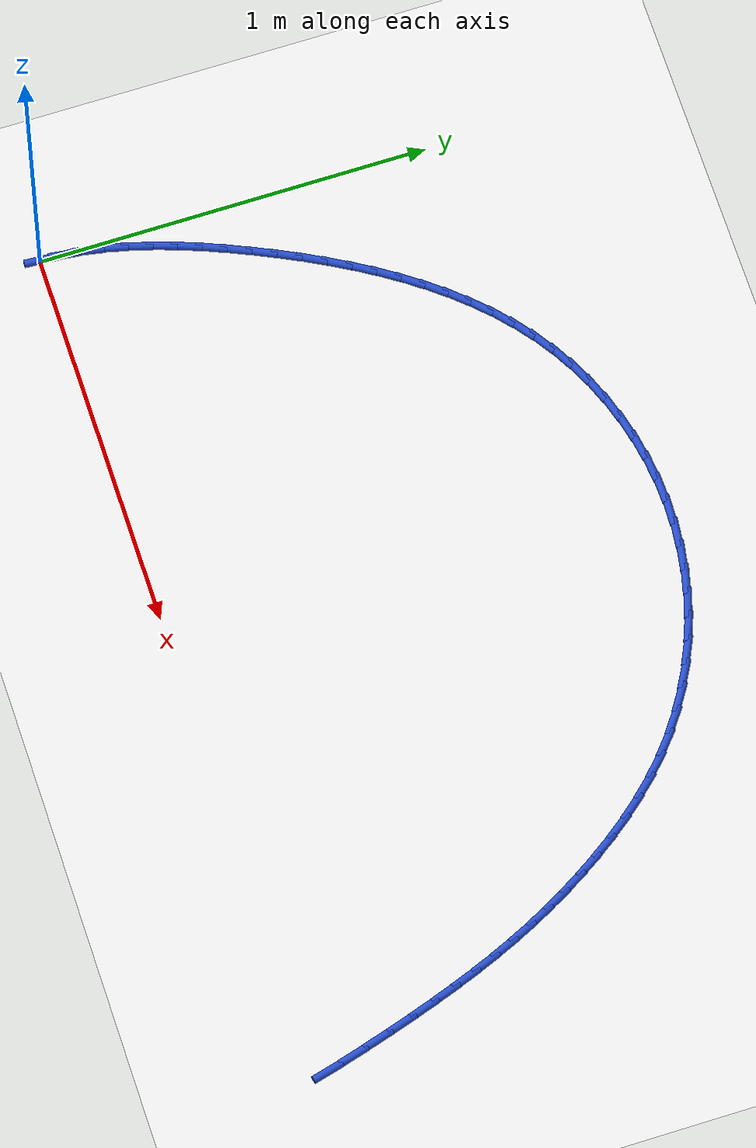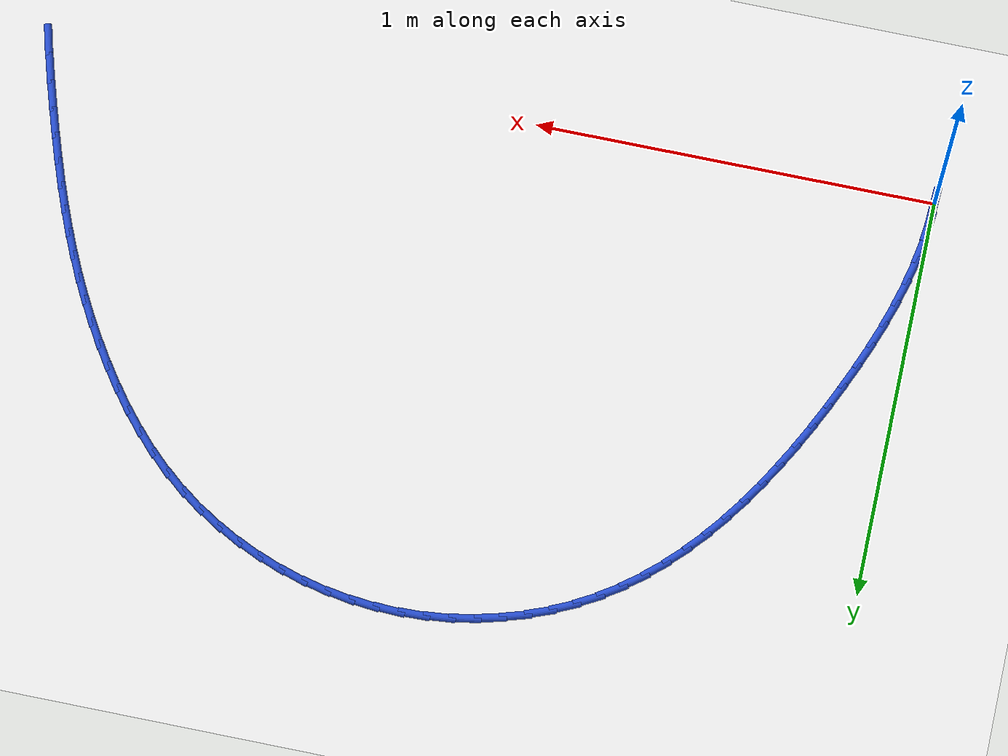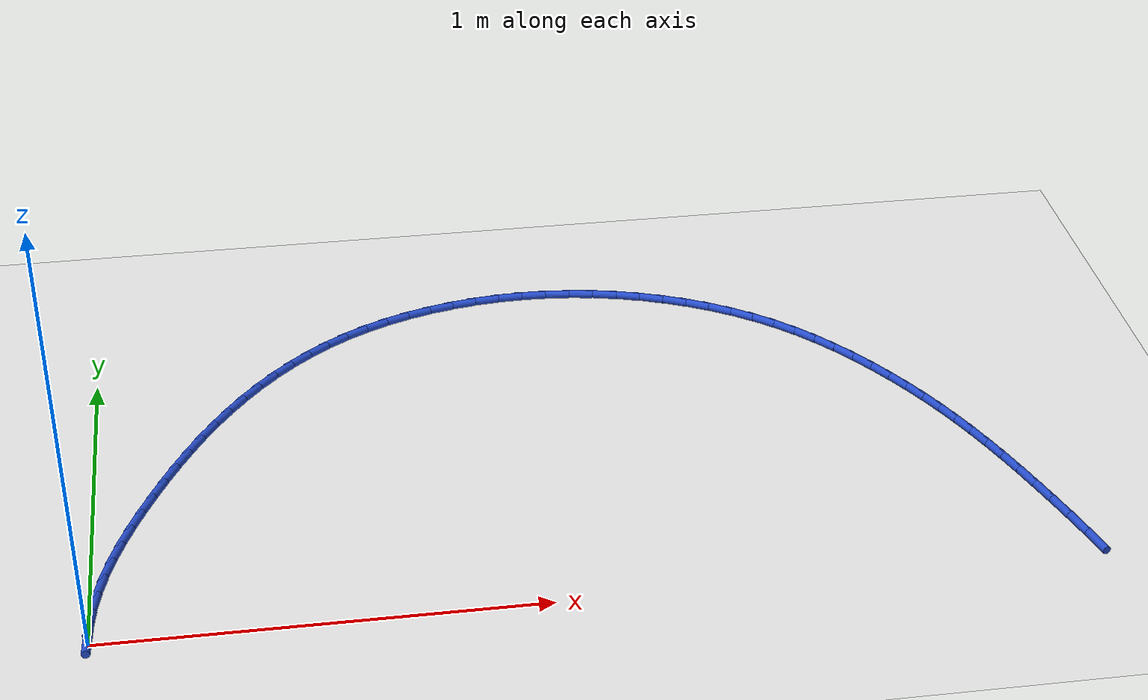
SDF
<sdf version="1.6">
 <world name="default">
  <model name="ground_plane">
   <static>1</static>
   <link name="link">
    <collision name="collision">
     <geometry><plane><normal>0 0 1</normal><size>100 100</size></plane></geometry>
     <surface><friction><ode><mu>100</mu><mu2>50</mu2></ode></friction></surface>
    </collision>
    <visual name="visual">
     <cast_shadows>0</cast_shadows>
     <geometry><plane><normal>0 0 1</normal><size>100 100</size></plane></geometry>
     <material>
      <script><uri>file://media/materials/scripts/gazebo.material</uri><name>Gazebo/WhiteGlow</name></script>
     </material>
    </visual>
   </link>
  </model>
  <model name="line">
   <link name="link_0">
    <pose>-3.469446951953614e-18 2.7755575615628914e-17 0.01 0 1.57 1.5122594867181272</pose>
    <collision name="collision">
     <geometry><cylinder><radius>0.01</radius><length>0.08</length></cylinder></geometry>
    </collision>
    <visual name="visual">
     <material>
      <script><name>Gazebo/Blue</name><uri>file://media/materials/scripts/gazebo.material</uri></script>
     </material>
     <geometry><cylinder><radius>0.01</radius><length>0.08</length></cylinder></geometry>
    </visual>
   </link>
   <link name="link_1">
    <pose>0.0035615798896285896 0.06077388127479469 0.01 0 1.57 1.4455330049709205</pose>
    <collision name="collision">
     <geometry><cylinder><radius>0.01</radius><length>0.08</length></cylinder></geometry>
    </collision>
    <visual name="visual">
     <material>
      <script><name>Gazebo/Blue</name><uri>file://media/materials/scripts/gazebo.material</uri></script>
     </material>
     <geometry><cylinder><radius>0.01</radius><length>0.08</length></cylinder></geometry>
    </visual>
   </link>
   <link name="link_2">
    <pose>0.011122728220957737 0.12081986854129141 0.01 0 1.57 1.3843247965620284</pose>
    <collision name="collision">
     <geometry><cylinder><radius>0.01</radius><length>0.08</length></cylinder></geometry>
    </collision>
    <visual name="visual">
     <material>
      <script><name>Gazebo/Blue</name><uri>file://media/materials/scripts/gazebo.material</uri></script>
     </material>
     <geometry><cylinder><radius>0.01</radius><length>0.08</length></cylinder></geometry>
    </visual>
   </link>
   <link name="link_3">
    <pose>0.0223268703134665 0.180206832028218 0.01 0 1.57 1.329160220083678</pose>
    <collision name="collision">
     <geometry><cylinder><radius>0.01</radius><length>0.08</length></cylinder></geometry>
    </collision>
    <visual name="visual">
     <material>
      <script><name>Gazebo/Blue</name><uri>file://media/materials/scripts/gazebo.material</uri></script>
     </material>
     <geometry><cylinder><radius>0.01</radius><length>0.08</length></cylinder></geometry>
    </visual>
   </link>
   <link name="link_4">
    <pose>0.03681743148663398 0.23900364196430238 0.01 0 1.57 1.280319859483705</pose>
    <collision name="collision">
     <geometry><cylinder><radius>0.01</radius><length>0.08</length></cylinder></geometry>
    </collision>
    <visual name="visual">
     <material>
      <script><name>Gazebo/Blue</name><uri>file://media/materials/scripts/gazebo.material</uri></script>
     </material>
     <geometry><cylinder><radius>0.01</radius><length>0.08</length></cylinder></geometry>
    </visual>
   </link>
   <link name="link_5">
    <pose>0.05423783705993924 0.2972791685782725 0.01 0 1.57 1.2378921011742043</pose>
    <collision name="collision">
     <geometry><cylinder><radius>0.01</radius><length>0.08</length></cylinder></geometry>
    </collision>
    <visual name="visual">
     <material>
      <script><name>Gazebo/Blue</name><uri>file://media/materials/scripts/gazebo.material</uri></script>
     </material>
     <geometry><cylinder><radius>0.01</radius><length>0.08</length></cylinder></geometry>
    </visual>
   </link>
   <link name="link_6">
    <pose>0.07423151235286138 0.3551022820988563 0.01 0 1.57 1.2018306769014013</pose>
    <collision name="collision">
     <geometry><cylinder><radius>0.01</radius><length>0.08</length></cylinder></geometry>
    </collision>
    <visual name="visual">
     <material>
      <script><name>Gazebo/Blue</name><uri>file://media/materials/scripts/gazebo.material</uri></script>
     </material>
     <geometry><cylinder><radius>0.01</radius><length>0.08</length></cylinder></geometry>
    </visual>
   </link>
   <link name="link_7">
    <pose>0.09644188268487944 0.4125418527547814 0.01 0 1.57 1.1720077185895563</pose>
    <collision name="collision">
     <geometry><cylinder><radius>0.01</radius><length>0.08</length></cylinder></geometry>
    </collision>
    <visual name="visual">
     <material>
      <script><name>Gazebo/Blue</name><uri>file://media/materials/scripts/gazebo.material</uri></script>
     </material>
     <geometry><cylinder><radius>0.01</radius><length>0.08</length></cylinder></geometry>
    </visual>
   </link>
   <link name="link_8">
    <pose>0.12051237337547249 0.4696667507747758 0.01 0 1.57 1.1481080132760115</pose>
    <collision name="collision">
     <geometry><cylinder><radius>0.01</radius><length>0.08</length></cylinder></geometry>
    </collision>
    <visual name="visual">
     <material>
      <script><name>Gazebo/Blue</name><uri>file://media/materials/scripts/gazebo.material</uri></script>
     </material>
     <geometry><cylinder><radius>0.01</radius><length>0.08</length></cylinder></geometry>
    </visual>
   </link>
   <link name="link_9">
    <pose>0.146094134003004 0.526540275438637 0.01 0 1.57 1.125929688942115</pose>
    <collision name="collision">
     <geometry><cylinder><radius>0.01</radius><length>0.08</length></cylinder></geometry>
    </collision>
    <visual name="visual">
     <material>
      <script><name>Gazebo/Blue</name><uri>file://media/materials/scripts/gazebo.material</uri></script>
     </material>
     <geometry><cylinder><radius>0.01</radius><length>0.08</length></cylinder></geometry>
    </visual>
   </link>
   <link name="link_10">
    <pose>0.1730466815888444 0.5830754456690236 0.01 0 1.57 1.1009221935636035</pose>
    <collision name="collision">
     <geometry><cylinder><radius>0.01</radius><length>0.08</length></cylinder></geometry>
    </collision>
    <visual name="visual">
     <material>
      <script><name>Gazebo/Blue</name><uri>file://media/materials/scripts/gazebo.material</uri></script>
     </material>
     <geometry><cylinder><radius>0.01</radius><length>0.08</length></cylinder></geometry>
    </visual>
   </link>
   <link name="link_11">
    <pose>0.20145653995682236 0.6390215568104097 0.01 0 1.57 1.0726861949880462</pose>
    <collision name="collision">
     <geometry><cylinder><radius>0.01</radius><length>0.08</length></cylinder></geometry>
    </collision>
    <visual name="visual">
     <material>
      <script><name>Gazebo/Blue</name><uri>file://media/materials/scripts/gazebo.material</uri></script>
     </material>
     <geometry><cylinder><radius>0.01</radius><length>0.08</length></cylinder></geometry>
    </visual>
   </link>
   <link name="link_12">
    <pose>0.23142169364188653 0.6941196384257478 0.01 0 1.57 1.0410150308499118</pose>
    <collision name="collision">
     <geometry><cylinder><radius>0.01</radius><length>0.08</length></cylinder></geometry>
    </collision>
    <visual name="visual">
     <material>
      <script><name>Gazebo/Blue</name><uri>file://media/materials/scripts/gazebo.material</uri></script>
     </material>
     <geometry><cylinder><radius>0.01</radius><length>0.08</length></cylinder></geometry>
    </visual>
   </link>
   <link name="link_13">
    <pose>0.2630401271789856 0.7481107200779891 0.01 0 1.57 1.0056783810211023</pose>
    <collision name="collision">
     <geometry><cylinder><radius>0.01</radius><length>0.08</length></cylinder></geometry>
    </collision>
    <visual name="visual">
     <material>
      <script><name>Gazebo/Blue</name><uri>file://media/materials/scripts/gazebo.material</uri></script>
     </material>
     <geometry><cylinder><radius>0.01</radius><length>0.08</length></cylinder></geometry>
    </visual>
   </link>
   <link name="link_14">
    <pose>0.2964098251030683 0.8007358313300863 0.01 0 1.57 0.9664304961892585</pose>
    <collision name="collision">
     <geometry><cylinder><radius>0.01</radius><length>0.08</length></cylinder></geometry>
    </collision>
    <visual name="visual">
     <material>
      <script><name>Gazebo/Blue</name><uri>file://media/materials/scripts/gazebo.material</uri></script>
     </material>
     <geometry><cylinder><radius>0.01</radius><length>0.08</length></cylinder></geometry>
    </visual>
   </link>
   <link name="link_15">
    <pose>0.33162877194908347 0.8517360017449914 0.01 0 1.57 0.9230221939276958</pose>
    <collision name="collision">
     <geometry><cylinder><radius>0.01</radius><length>0.08</length></cylinder></geometry>
    </collision>
    <visual name="visual">
     <material>
      <script><name>Gazebo/Blue</name><uri>file://media/materials/scripts/gazebo.material</uri></script>
     </material>
     <geometry><cylinder><radius>0.01</radius><length>0.08</length></cylinder></geometry>
    </visual>
   </link>
   <link name="link_16">
    <pose>0.36879495225197956 0.9008522608856561 0.01 0 1.57 0.8752179065673931</pose>
    <collision name="collision">
     <geometry><cylinder><radius>0.01</radius><length>0.08</length></cylinder></geometry>
    </collision>
    <visual name="visual">
     <material>
      <script><name>Gazebo/Blue</name><uri>file://media/materials/scripts/gazebo.material</uri></script>
     </material>
     <geometry><cylinder><radius>0.01</radius><length>0.08</length></cylinder></geometry>
    </visual>
   </link>
   <link name="link_17">
    <pose>0.40800635054670564 0.947825638315033 0.01 0 1.57 0.8228189444351948</pose>
    <collision name="collision">
     <geometry><cylinder><radius>0.01</radius><length>0.08</length></cylinder></geometry>
    </collision>
    <visual name="visual">
     <material>
      <script><name>Gazebo/Blue</name><uri>file://media/materials/scripts/gazebo.material</uri></script>
     </material>
     <geometry><cylinder><radius>0.01</radius><length>0.08</length></cylinder></geometry>
    </visual>
   </link>
   <link name="link_18">
    <pose>0.44936095136821014 0.9923971635960737 0.01 0 1.57 0.7656936113624581</pose>
    <collision name="collision">
     <geometry><cylinder><radius>0.01</radius><length>0.08</length></cylinder></geometry>
    </collision>
    <visual name="visual">
     <material>
      <script><name>Gazebo/Blue</name><uri>file://media/materials/scripts/gazebo.material</uri></script>
     </material>
     <geometry><cylinder><radius>0.01</radius><length>0.08</length></cylinder></geometry>
    </visual>
   </link>
   <link name="link_19">
    <pose>0.49295673925144196 1.0343078662917304 0.01 0 1.57 0.7038136423994941</pose>
    <collision name="collision">
     <geometry><cylinder><radius>0.01</radius><length>0.08</length></cylinder></geometry>
    </collision>
    <visual name="visual">
     <material>
      <script><name>Gazebo/Blue</name><uri>file://media/materials/scripts/gazebo.material</uri></script>
     </material>
     <geometry><cylinder><radius>0.01</radius><length>0.08</length></cylinder></geometry>
    </visual>
   </link>
   <link name="link_20">
    <pose>0.5388916987313499 1.073298775964956 0.01 0 1.57 0.6372944506233511</pose>
    <collision name="collision">
     <geometry><cylinder><radius>0.01</radius><length>0.08</length></cylinder></geometry>
    </collision>
    <visual name="visual">
     <material>
      <script><name>Gazebo/Blue</name><uri>file://media/materials/scripts/gazebo.material</uri></script>
     </material>
     <geometry><cylinder><radius>0.01</radius><length>0.08</length></cylinder></geometry>
    </visual>
   </link>
   <link name="link_21">
    <pose>0.5872638143428823 1.1091109221787008 0.01 0 1.57 0.5664502256882802</pose>
    <collision name="collision">
     <geometry><cylinder><radius>0.01</radius><length>0.08</length></cylinder></geometry>
    </collision>
    <visual name="visual">
     <material>
      <script><name>Gazebo/Blue</name><uri>file://media/materials/scripts/gazebo.material</uri></script>
     </material>
     <geometry><cylinder><radius>0.01</radius><length>0.08</length></cylinder></geometry>
    </visual>
   </link>
   <link name="link_22">
    <pose>0.6381700008158514 1.1414858178577818 0.01 0 1.57 0.49369029271339276</pose>
    <collision name="collision">
     <geometry><cylinder><radius>0.01</radius><length>0.08</length></cylinder></geometry>
    </collision>
    <visual name="visual">
     <material>
      <script><name>Gazebo/Blue</name><uri>file://media/materials/scripts/gazebo.material</uri></script>
     </material>
     <geometry><cylinder><radius>0.01</radius><length>0.08</length></cylinder></geometry>
    </visual>
   </link>
   <link name="link_23">
    <pose>0.6915746291072221 1.1702248621650384 0.01 0 1.57 0.42282264379164486</pose>
    <collision name="collision">
     <geometry><cylinder><radius>0.01</radius><length>0.08</length></cylinder></geometry>
    </collision>
    <visual name="visual">
     <material>
      <script><name>Gazebo/Blue</name><uri>file://media/materials/scripts/gazebo.material</uri></script>
     </material>
     <geometry><cylinder><radius>0.01</radius><length>0.08</length></cylinder></geometry>
    </visual>
   </link>
   <link name="link_24">
    <pose>0.7471829674878843 1.1952465226460602 0.01 0 1.57 0.35385954336195535</pose>
    <collision name="collision">
     <geometry><cylinder><radius>0.01</radius><length>0.08</length></cylinder></geometry>
    </collision>
    <visual name="visual">
     <material>
      <script><name>Gazebo/Blue</name><uri>file://media/materials/scripts/gazebo.material</uri></script>
     </material>
     <geometry><cylinder><radius>0.01</radius><length>0.08</length></cylinder></geometry>
    </visual>
   </link>
   <link name="link_25">
    <pose>0.8046702787529745 1.2164828239908003 0.01 0 1.57 0.28632899231018466</pose>
    <collision name="collision">
     <geometry><cylinder><radius>0.01</radius><length>0.08</length></cylinder></geometry>
    </collision>
    <visual name="visual">
     <material>
      <script><name>Gazebo/Blue</name><uri>file://media/materials/scripts/gazebo.material</uri></script>
     </material>
     <geometry><cylinder><radius>0.01</radius><length>0.08</length></cylinder></geometry>
    </visual>
   </link>
   <link name="link_26">
    <pose>0.8637118256976313 1.2338657908892114 0.01 0 1.57 0.219745277671107</pose>
    <collision name="collision">
     <geometry><cylinder><radius>0.01</radius><length>0.08</length></cylinder></geometry>
    </collision>
    <visual name="visual">
     <material>
      <script><name>Gazebo/Blue</name><uri>file://media/materials/scripts/gazebo.material</uri></script>
     </material>
     <geometry><cylinder><radius>0.01</radius><length>0.08</length></cylinder></geometry>
    </visual>
   </link>
   <link name="link_27">
    <pose>0.9239828711169915 1.2473274480312468 0.01 0 1.57 0.1536186161068233</pose>
    <collision name="collision">
     <geometry><cylinder><radius>0.01</radius><length>0.08</length></cylinder></geometry>
    </collision>
    <visual name="visual">
     <material>
      <script><name>Gazebo/Blue</name><uri>file://media/materials/scripts/gazebo.material</uri></script>
     </material>
     <geometry><cylinder><radius>0.01</radius><length>0.08</length></cylinder></geometry>
    </visual>
   </link>
   <link name="link_28">
    <pose>0.9851586778061934 1.2567998201068593 0.01 0 1.57 0.08746213480404744</pose>
    <collision name="collision">
     <geometry><cylinder><radius>0.01</radius><length>0.08</length></cylinder></geometry>
    </collision>
    <visual name="visual">
     <material>
      <script><name>Gazebo/Blue</name><uri>file://media/materials/scripts/gazebo.material</uri></script>
     </material>
     <geometry><cylinder><radius>0.01</radius><length>0.08</length></cylinder></geometry>
    </visual>
   </link>
   <link name="link_29">
    <pose>1.046914508560374 1.2622149318060019 0.01 0 1.57 0.02079772273569857</pose>
    <collision name="collision">
     <geometry><cylinder><radius>0.01</radius><length>0.08</length></cylinder></geometry>
    </collision>
    <visual name="visual">
     <material>
      <script><name>Gazebo/Blue</name><uri>file://media/materials/scripts/gazebo.material</uri></script>
     </material>
     <geometry><cylinder><radius>0.01</radius><length>0.08</length></cylinder></geometry>
    </visual>
   </link>
   <link name="link_30">
    <pose>1.1089256261746714 1.2635048078186277 0.01 0 1.57 -0.0467063016780621</pose>
    <collision name="collision">
     <geometry><cylinder><radius>0.01</radius><length>0.08</length></cylinder></geometry>
    </collision>
    <visual name="visual">
     <material>
      <script><name>Gazebo/Blue</name><uri>file://media/materials/scripts/gazebo.material</uri></script>
     </material>
     <geometry><cylinder><radius>0.01</radius><length>0.08</length></cylinder></geometry>
    </visual>
   </link>
   <link name="link_31">
    <pose>1.170870355317502 1.2606094929498426 0.01 0 1.57 -0.11390092220965328</pose>
    <collision name="collision">
     <geometry><cylinder><radius>0.01</radius><length>0.08</length></cylinder></geometry>
    </collision>
    <visual name="visual">
     <material>
      <script><name>Gazebo/Blue</name><uri>file://media/materials/scripts/gazebo.material</uri></script>
     </material>
     <geometry><cylinder><radius>0.01</radius><length>0.08</length></cylinder></geometry>
    </visual>
   </link>
   <link name="link_32">
    <pose>1.2324630962127683 1.2535635264801315 0.01 0 1.57 -0.180067508556298</pose>
    <collision name="collision">
     <geometry><cylinder><radius>0.01</radius><length>0.08</length></cylinder></geometry>
    </collision>
    <visual name="visual">
     <material>
      <script><name>Gazebo/Blue</name><uri>file://media/materials/scripts/gazebo.material</uri></script>
     </material>
     <geometry><cylinder><radius>0.01</radius><length>0.08</length></cylinder></geometry>
    </visual>
   </link>
   <link name="link_33">
    <pose>1.2934417542231358 1.242463015855083 0.01 0 1.57 -0.2454824108140555</pose>
    <collision name="collision">
     <geometry><cylinder><radius>0.01</radius><length>0.08</length></cylinder></geometry>
    </collision>
    <visual name="visual">
     <material>
      <script><name>Gazebo/Blue</name><uri>file://media/materials/scripts/gazebo.material</uri></script>
     </material>
     <geometry><cylinder><radius>0.01</radius><length>0.08</length></cylinder></geometry>
    </visual>
   </link>
   <link name="link_34">
    <pose>1.3535446369547877 1.2274051221364952 0.01 0 1.57 -0.3104593813007794</pose>
    <collision name="collision">
     <geometry><cylinder><radius>0.01</radius><length>0.08</length></cylinder></geometry>
    </collision>
    <visual name="visual">
     <material>
      <script><name>Gazebo/Blue</name><uri>file://media/materials/scripts/gazebo.material</uri></script>
     </material>
     <geometry><cylinder><radius>0.01</radius><length>0.08</length></cylinder></geometry>
    </visual>
   </link>
   <link name="link_35">
    <pose>1.4125100520139076 1.208487006386167 0.01 0 1.57 -0.3753243724705086</pose>
    <collision name="collision">
     <geometry><cylinder><radius>0.01</radius><length>0.08</length></cylinder></geometry>
    </collision>
    <visual name="visual">
     <material>
      <script><name>Gazebo/Blue</name><uri>file://media/materials/scripts/gazebo.material</uri></script>
     </material>
     <geometry><cylinder><radius>0.01</radius><length>0.08</length></cylinder></geometry>
    </visual>
   </link>
   <link name="link_36">
    <pose>1.470076307006677 1.1858058296658969 0.01 0 1.57 -0.4404084631138342</pose>
    <collision name="collision">
     <geometry><cylinder><radius>0.01</radius><length>0.08</length></cylinder></geometry>
    </collision>
    <visual name="visual">
     <material>
      <script><name>Gazebo/Blue</name><uri>file://media/materials/scripts/gazebo.material</uri></script>
     </material>
     <geometry><cylinder><radius>0.01</radius><length>0.08</length></cylinder></geometry>
    </visual>
   </link>
   <link name="link_37">
    <pose>1.5259817095392798 1.1594587530374834 0.01 0 1.57 -0.5060410246189369</pose>
    <collision name="collision">
     <geometry><cylinder><radius>0.01</radius><length>0.08</length></cylinder></geometry>
    </collision>
    <visual name="visual">
     <material>
      <script><name>Gazebo/Blue</name><uri>file://media/materials/scripts/gazebo.material</uri></script>
     </material>
     <geometry><cylinder><radius>0.01</radius><length>0.08</length></cylinder></geometry>
    </visual>
   </link>
   <link name="link_38">
    <pose>1.5799645672178984 1.129542937562725 0.01 0 1.57 -0.5725424721782693</pose>
    <collision name="collision">
     <geometry><cylinder><radius>0.01</radius><length>0.08</length></cylinder></geometry>
    </collision>
    <visual name="visual">
     <material>
      <script><name>Gazebo/Blue</name><uri>file://media/materials/scripts/gazebo.material</uri></script>
     </material>
     <geometry><cylinder><radius>0.01</radius><length>0.08</length></cylinder></geometry>
    </visual>
   </link>
   <link name="link_39">
    <pose>1.631763187648716 1.0961555443034205 0.01 0 1.57 -0.6402159566670357</pose>
    <collision name="collision">
     <geometry><cylinder><radius>0.01</radius><length>0.08</length></cylinder></geometry>
    </collision>
    <visual name="visual">
     <material>
      <script><name>Gazebo/Blue</name><uri>file://media/materials/scripts/gazebo.material</uri></script>
     </material>
     <geometry><cylinder><radius>0.01</radius><length>0.08</length></cylinder></geometry>
    </visual>
   </link>
   <link name="link_40">
    <pose>1.681115878437915 1.0593937343213689 0.01 0 1.57 -0.7092335862960552</pose>
    <collision name="collision">
     <geometry><cylinder><radius>0.01</radius><length>0.08</length></cylinder></geometry>
    </collision>
    <visual name="visual">
     <material>
      <script><name>Gazebo/Blue</name><uri>file://media/materials/scripts/gazebo.material</uri></script>
     </material>
     <geometry><cylinder><radius>0.01</radius><length>0.08</length></cylinder></geometry>
    </visual>
   </link>
   <link name="link_41">
    <pose>1.7277650889238436 1.019359526022124 0.01 0 1.57 -0.775997732054953</pose>
    <collision name="collision">
     <geometry><cylinder><radius>0.01</radius><length>0.08</length></cylinder></geometry>
    </collision>
    <visual name="visual">
     <material>
      <script><name>Gazebo/Blue</name><uri>file://media/materials/scripts/gazebo.material</uri></script>
     </material>
     <geometry><cylinder><radius>0.01</radius><length>0.08</length></cylinder></geometry>
    </visual>
   </link>
   <link name="link_42">
    <pose>1.7716065343942418 0.9763346851663892 0.01 0 1.57 -0.8359291972436825</pose>
    <collision name="collision">
     <geometry><cylinder><radius>0.01</radius><length>0.08</length></cylinder></geometry>
    </collision>
    <visual name="visual">
     <material>
      <script><name>Gazebo/Blue</name><uri>file://media/materials/scripts/gazebo.material</uri></script>
     </material>
     <geometry><cylinder><radius>0.01</radius><length>0.08</length></cylinder></geometry>
    </visual>
   </link>
   <link name="link_43">
    <pose>1.8127306604351434 0.9308293534602364 0.01 0 1.57 -0.8891421645476166</pose>
    <collision name="collision">
     <geometry><cylinder><radius>0.01</radius><length>0.08</length></cylinder></geometry>
    </collision>
    <visual name="visual">
     <material>
      <script><name>Gazebo/Blue</name><uri>file://media/materials/scripts/gazebo.material</uri></script>
     </material>
     <geometry><cylinder><radius>0.01</radius><length>0.08</length></cylinder></geometry>
    </visual>
   </link>
   <link name="link_44">
    <pose>1.8512404965613 0.8833684307991022 0.01 0 1.57 -0.9361252658417378</pose>
    <collision name="collision">
     <geometry><cylinder><radius>0.01</radius><length>0.08</length></cylinder></geometry>
    </collision>
    <visual name="visual">
     <material>
      <script><name>Gazebo/Blue</name><uri>file://media/materials/scripts/gazebo.material</uri></script>
     </material>
     <geometry><cylinder><radius>0.01</radius><length>0.08</length></cylinder></geometry>
    </visual>
   </link>
   <link name="link_45">
    <pose>1.8872390722874652 0.834476817078423 0.01 0 1.57 -0.9773626967201882</pose>
    <collision name="collision">
     <geometry><cylinder><radius>0.01</radius><length>0.08</length></cylinder></geometry>
    </collision>
    <visual name="visual">
     <material>
      <script><name>Gazebo/Blue</name><uri>file://media/materials/scripts/gazebo.material</uri></script>
     </material>
     <geometry><cylinder><radius>0.01</radius><length>0.08</length></cylinder></geometry>
    </visual>
   </link>
   <link name="link_46">
    <pose>1.9208294171283882 0.7846794121936355 0.01 0 1.57 -1.0135053760773045</pose>
    <collision name="collision">
     <geometry><cylinder><radius>0.01</radius><length>0.08</length></cylinder></geometry>
    </collision>
    <visual name="visual">
     <material>
      <script><name>Gazebo/Blue</name><uri>file://media/materials/scripts/gazebo.material</uri></script>
     </material>
     <geometry><cylinder><radius>0.01</radius><length>0.08</length></cylinder></geometry>
    </visual>
   </link>
   <link name="link_47">
    <pose>1.952119666249377 0.7344689647443545 0.01 0 1.57 -1.0475892070692374</pose>
    <collision name="collision">
     <geometry><cylinder><radius>0.01</radius><length>0.08</length></cylinder></geometry>
    </collision>
    <visual name="visual">
     <material>
      <script><name>Gazebo/Blue</name><uri>file://media/materials/scripts/gazebo.material</uri></script>
     </material>
     <geometry><cylinder><radius>0.01</radius><length>0.08</length></cylinder></geometry>
    </visual>
   </link>
   <link name="link_48">
    <pose>1.9812868896859157 0.6839041267584037 0.01 0 1.57 -1.0811600729205073</pose>
    <collision name="collision">
     <geometry><cylinder><radius>0.01</radius><length>0.08</length></cylinder></geometry>
    </collision>
    <visual name="visual">
     <material>
      <script><name>Gazebo/Blue</name><uri>file://media/materials/scripts/gazebo.material</uri></script>
     </material>
     <geometry><cylinder><radius>0.01</radius><length>0.08</length></cylinder></geometry>
    </visual>
   </link>
   <link name="link_49">
    <pose>2.00855764930943 0.6327318903408339 0.01 0 1.57 -1.1135919848897253</pose>
    <collision name="collision">
     <geometry><cylinder><radius>0.01</radius><length>0.08</length></cylinder></geometry>
    </collision>
    <visual name="visual">
     <material>
      <script><name>Gazebo/Blue</name><uri>file://media/materials/scripts/gazebo.material</uri></script>
     </material>
     <geometry><cylinder><radius>0.01</radius><length>0.08</length></cylinder></geometry>
    </visual>
   </link>
   <link name="link_50">
    <pose>2.034159589699875 0.5806924295660127 0.01 0 1.57 -1.1442597193763473</pose>
    <collision name="collision">
     <geometry><cylinder><radius>0.01</radius><length>0.08</length></cylinder></geometry>
    </collision>
    <visual name="visual">
     <material>
      <script><name>Gazebo/Blue</name><uri>file://media/materials/scripts/gazebo.material</uri></script>
     </material>
     <geometry><cylinder><radius>0.01</radius><length>0.08</length></cylinder></geometry>
    </visual>
   </link>
   <link name="link_51">
    <pose>2.0583203554372043 0.5275259185083084 0.01 0 1.57 -1.1726260024497326</pose>
    <collision name="collision">
     <geometry><cylinder><radius>0.01</radius><length>0.08</length></cylinder></geometry>
    </collision>
    <visual name="visual">
     <material>
      <script><name>Gazebo/Blue</name><uri>file://media/materials/scripts/gazebo.material</uri></script>
     </material>
     <geometry><cylinder><radius>0.01</radius><length>0.08</length></cylinder></geometry>
    </visual>
   </link>
   <link name="link_52">
    <pose>2.0812675911013736 0.47297253124208793 0.01 0 1.57 -1.1982714459103943</pose>
    <collision name="collision">
     <geometry><cylinder><radius>0.01</radius><length>0.08</length></cylinder></geometry>
    </collision>
    <visual name="visual">
     <material>
      <script><name>Gazebo/Blue</name><uri>file://media/materials/scripts/gazebo.material</uri></script>
     </material>
     <geometry><cylinder><radius>0.01</radius><length>0.08</length></cylinder></geometry>
    </visual>
   </link>
   <link name="link_53">
    <pose>2.1032289412723357 0.4167724418417201 0.01 0 1.57 -1.2209096489864033</pose>
    <collision name="collision">
     <geometry><cylinder><radius>0.01</radius><length>0.08</length></cylinder></geometry>
    </collision>
    <visual name="visual">
     <material>
      <script><name>Gazebo/Blue</name><uri>file://media/materials/scripts/gazebo.material</uri></script>
     </material>
     <geometry><cylinder><radius>0.01</radius><length>0.08</length></cylinder></geometry>
    </visual>
   </link>
   <link name="link_54">
    <pose>2.1244320505300456 0.35866582438157185 0.01 0 1.57 -1.2403877180128147</pose>
    <collision name="collision">
     <geometry><cylinder><radius>0.01</radius><length>0.08</length></cylinder></geometry>
    </collision>
    <visual name="visual">
     <material>
      <script><name>Gazebo/Blue</name><uri>file://media/materials/scripts/gazebo.material</uri></script>
     </material>
     <geometry><cylinder><radius>0.01</radius><length>0.08</length></cylinder></geometry>
    </visual>
   </link>
   <link name="link_55">
    <pose>2.145104563454457 0.29839285293601175 0.01 0 1.57 -1.2566749744754342</pose>
    <collision name="collision">
     <geometry><cylinder><radius>0.01</radius><length>0.08</length></cylinder></geometry>
    </collision>
    <visual name="visual">
     <material>
      <script><name>Gazebo/Blue</name><uri>file://media/materials/scripts/gazebo.material</uri></script>
     </material>
     <geometry><cylinder><radius>0.01</radius><length>0.08</length></cylinder></geometry>
    </visual>
   </link>
   <link name="link_56">
    <pose>2.1654741246255256 0.23569370157940694 0.01 0 1.57 -1.2698727782587826</pose>
    <collision name="collision">
     <geometry><cylinder><radius>0.01</radius><length>0.08</length></cylinder></geometry>
    </collision>
    <visual name="visual">
     <material>
      <script><name>Gazebo/Blue</name><uri>file://media/materials/scripts/gazebo.material</uri></script>
     </material>
     <geometry><cylinder><radius>0.01</radius><length>0.08</length></cylinder></geometry>
    </visual>
   </link>
   <link name="link_57">
    <pose>2.1857649581222893 0.17031289242846173 0.01 0 1.57 -1.282372902629245</pose>
    <collision name="collision">
     <geometry><cylinder><radius>0.01</radius><length>0.08</length></cylinder></geometry>
    </collision>
    <visual name="visual">
     <material>
      <script><name>Gazebo/Blue</name><uri>file://media/materials/scripts/gazebo.material</uri></script>
     </material>
     <geometry><cylinder><radius>0.01</radius><length>0.08</length></cylinder></geometry>
    </visual>
   </link>
   <link name="link_58">
    <pose>2.2059337645163057 0.1023350157843913 0.01 0 1.57 -1.2981449902871562</pose>
    <collision name="collision">
     <geometry><cylinder><radius>0.01</radius><length>0.08</length></cylinder></geometry>
    </collision>
    <visual name="visual">
     <material>
      <script><name>Gazebo/Blue</name><uri>file://media/materials/scripts/gazebo.material</uri></script>
     </material>
     <geometry><cylinder><radius>0.01</radius><length>0.08</length></cylinder></geometry>
    </visual>
   </link>
   <link name="link_59">
    <pose>2.2254821384599683 0.03242317949682397 0.01 0 1.57 -1.3178459931859041</pose>
    <collision name="collision">
     <geometry><cylinder><radius>0.01</radius><length>0.08</length></cylinder></geometry>
    </collision>
    <visual name="visual">
     <material>
      <script><name>Gazebo/Blue</name><uri>file://media/materials/scripts/gazebo.material</uri></script>
     </material>
     <geometry><cylinder><radius>0.01</radius><length>0.08</length></cylinder></geometry>
    </visual>
   </link>
   <link name="link_121">
    <pose>0.0036408020043759808 0.06068050498640865 0.01 0 1.57 1.5108686362926533</pose>
    <collision name="collision">
     <geometry><cylinder><radius>0.01</radius><length>0.08</length></cylinder></geometry>
    </collision>
    <visual name="visual">
     <material>
      <script><name>Gazebo/Blue</name><uri>file://media/materials/scripts/gazebo.material</uri></script>
     </material>
     <geometry><cylinder><radius>0.01</radius><length>0.08</length></cylinder></geometry>
    </visual>
   </link>
  </model>
 </world>
</sdf>
